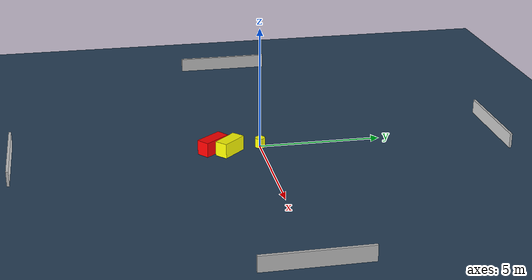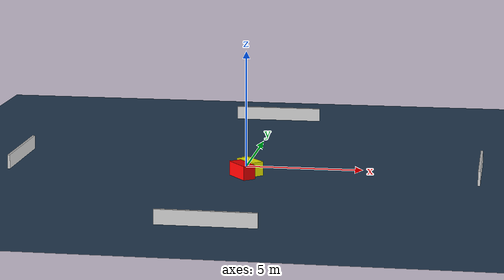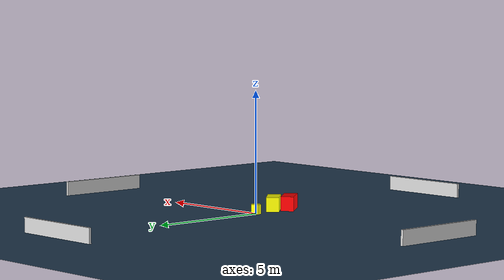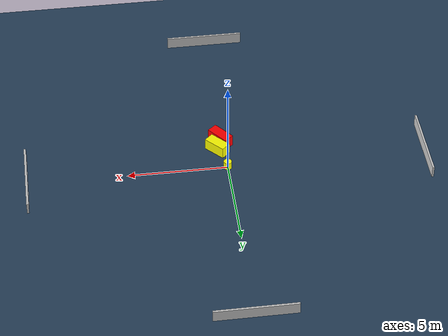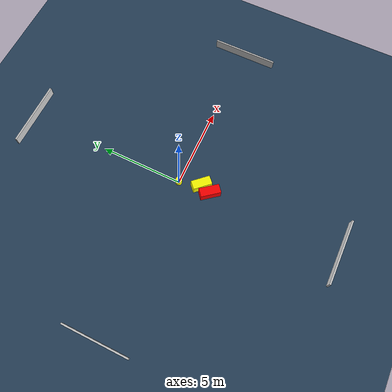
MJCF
<?xml version="1.0" ?>
<mujoco model="generated_environment">
  <option timestep="0.01" integrator="RK4" cone="elliptic"/>
  <default>
    <geom density="1"/>
  </default>
  <asset>
    <texture builtin="gradient" height="3072" name="skybox" rgb1="0.3 0.5 0.7" rgb2="0 0 0" type="skybox" width="512"/>
    <texture builtin="checker" height="300" name="groundplane" rgb1="0.2 0.3 0.4" rgb2="0.1 0.2 0.3" type="2d" width="300"/>
    <material name="groundplane" reflectance="0.2" texrepeat="5 5" texture="groundplane"/>
  </asset>
  <worldbody>
    <light dir="0 0 -1" directional="true" pos="0 0 1.5"/>
    <geom condim="3" friction="0.5 0.005 0.001" material="groundplane" name="floor" pos="0 0 0" size="0 0 0.05" type="plane"/>
    <body name="walls">
      <geom name="wall_1" condim="4" pos="-10.0 0.0 0.3" rgba="0.800000011920929 0.800000011920929 0.800000011920929 1.0" size="0.05 2.0 0.3" type="box"/>
      <geom name="wall_2" condim="4" pos="10.0 0.0 0.3" rgba="0.800000011920929 0.800000011920929 0.800000011920929 1.0" size="0.05 2.0 0.3" type="box"/>
      <geom name="wall_3" condim="4" pos="0.0 -10.0 0.3" rgba="0.800000011920929 0.800000011920929 0.800000011920929 1.0" size="2.0 0.05 0.3" type="box"/>
      <geom name="wall_4" condim="4" pos="0.0 10.0 0.3" rgba="0.800000011920929 0.800000011920929 0.800000011920929 1.0" size="2.0 0.05 0.3" type="box"/>
    </body>
    <body name="robot">
      <joint name="joint_x" type="slide" pos="0 0 0" axis="1 0 0"/>
      <joint name="joint_y" type="slide" pos="0 0 0" axis="0 1 0"/>
      <geom name="robot" type="cylinder" pos="0.0 0.0 0.2" size="0.2 0.2 0.0" mass="5.0" friction="1.0 0.005 0.0001" condim="4" rgba="1.0 1.0 0.0 1.0"/>
    </body>
    <body name="obstacle_1_movable">
      <geom name="obstacle_1_movable" condim="4" pos="0.35996358170622145 -1.306134457997469 0.3" euler="0 0 43.37474089001995" friction="0.0 0.005 0.001" rgba="1.0 1.0 0.0 1.0" size="0.2660893823378174 0.5772987741175193 0.3" type="box" mass="0.1"/>
      <joint type="free"/>
    </body>
    <body name="obstacle_2_static">
      <geom name="obstacle_2_static" condim="4" pos="0.1182446722443017 -1.953150458375672 0.3" euler="0 0 308.8211386218407" friction="0.0 0.005 0.001" rgba="1.0 0.0 0.0 1.0" size="0.6075234060280408 0.2701299965612811 0.3" type="box"/>
    </body>
  </worldbody>
  <actuator>
    <motor name="actuator_x" joint="joint_x" gear="1" ctrlrange="-1 1"/>
    <motor name="actuator_y" joint="joint_y" gear="1" ctrlrange="-1 1"/>
  </actuator>
</mujoco>
